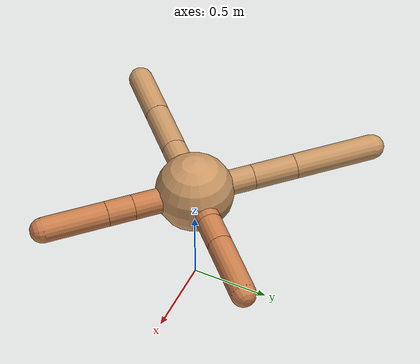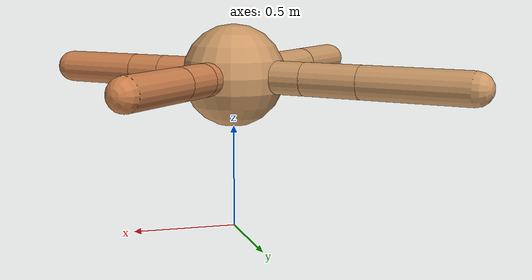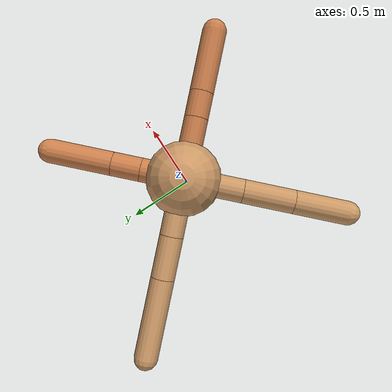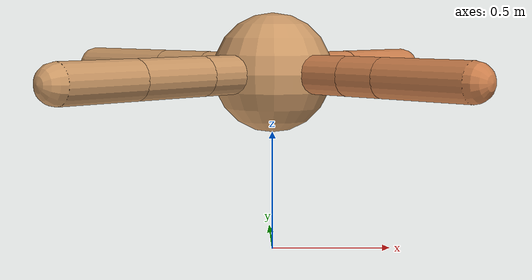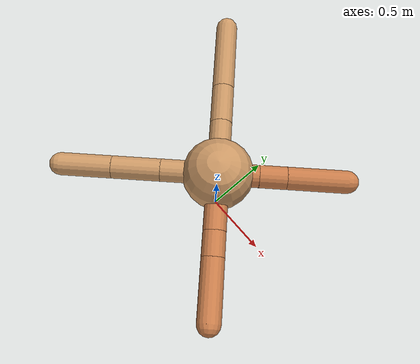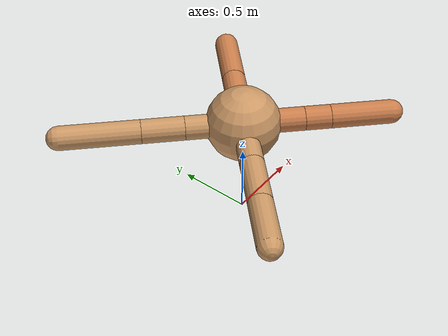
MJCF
<mujoco model="ant">
  <compiler angle="degree" coordinate="local" inertiafromgeom="true" />
  <option integrator="RK4" timestep="0.01" />
  <custom>
    <numeric data="0.0 0.0 0.55 1.0 0.0 0.0 0.0 0.0 1.0 0.0 -1.0 0.0 -1.0 0.0 1.0" name="init_qpos" />
  </custom>
  <default>
    <joint armature="1" damping="1" limited="true" />
    <geom conaffinity="0" condim="3" density="5.0" friction="1.5 0.1 0.1" margin="0.01" rgba="0.8 0.6 0.4 1" />
  </default>
  <worldbody>
    <body name="torso" pos="0 0 0.75">
      <geom name="torso_geom" pos="0 0 0" size="0.25" type="sphere" />

      <body name="front_left_leg" pos="0 0 0">
        <geom fromto="0.0 0.0 0.0 0.2 0.2 0.0" name="aux_1_geom" size="0.08" type="capsule" rgba=".8 .5 .3 1" />
        <body name="aux_1" pos="0.2 0.2 0.0">
          <joint axis="0 0 1" name="hip_1" pos="0.0 0.0 0.0" range="-40 40" type="hinge" />
          <geom fromto="0.0 0.0 0.0 0.13511512572510734 0.13511512572510734 0.0" name="left_leg_geom" size="0.08" type="capsule" rgba=".8 .5 .3 1" />
          <body pos="0.13511512572510734 0.13511512572510734 0.0" name="front_left_foot">
            <joint axis="-1 1 0" name="ankle_1" pos="0.0 0.0 0.0" range="30 100" type="hinge" />
            <geom fromto="0.0 0.0 0.0 0.29298255934488665 0.29298255934488665 0.0" name="left_ankle_geom" size="0.08" type="capsule" rgba=".8 .5 .3 1" />
          </body>
        </body>
      </body>
      <body name="front_right_leg" pos="0 0 0">
        <geom fromto="0.0 0.0 0.0 -0.27102158337002596 0.27102158337002596 0.0" name="aux_2_geom" size="0.08" type="capsule" />
        <body name="aux_2" pos="-0.27102158337002596 0.27102158337002596 0.0">
          <joint axis="0 0 1" name="hip_2" pos="0.0 0.0 0.0" range="-40 40" type="hinge" />
          <geom fromto="0.0 0.0 0.0 -0.20021704776604557 0.20021704776604557 0.0" name="right_leg_geom" size="0.08" type="capsule" />
          <body pos="-0.20021704776604557 0.20021704776604557 0.0" name="front_right_foot">
            <joint axis="1 1 0" name="ankle_2" pos="0.0 0.0 0.0" range="-100 -30" type="hinge" />
            <geom fromto="0.0 0.0 0.0 -0.3764345558673991 0.3764345558673991 0.0" name="right_ankle_geom" size="0.08" type="capsule" />
          </body>
        </body>
      </body>
      <body name="left_back_leg" pos="0 0 0">
        <geom fromto="0.0 0.0 0.0 -0.2812864740284538 -0.2812864740284538 0.0" name="aux_3_geom" size="0.08" type="capsule" />
        <body name="aux_3" pos="-0.2812864740284538 -0.2812864740284538 0.0">
          <joint axis="0 0 1" name="hip_3" pos="0.0 0.0 0.0" range="-40 40" type="hinge" />
          <geom fromto="0.0 0.0 0.0 -0.23955659491332276 -0.23955659491332276 0.0" name="back_leg_geom" size="0.08" type="capsule" />
          <body pos="-0.23955659491332276 -0.23955659491332276 0.0" name="left_back_foot">
            <joint axis="-1 1 0" name="ankle_3" pos="0.0 0.0 0.0" range="-100 -30" type="hinge" />
            <geom fromto="0.0 0.0 0.0 -0.25429571355539077 -0.25429571355539077 0.0" name="third_ankle_geom" size="0.08" type="capsule" />
          </body>
        </body>
      </body>
      <body name="right_back_leg" pos="0 0 0">
        <geom fromto="0.0 0.0 0.0 0.286043239310007 -0.286043239310007 0.0" name="aux_4_geom" size="0.08" type="capsule" rgba=".8 .5 .3 1" />
        <body name="aux_4" pos="0.286043239310007 -0.286043239310007 0.0">
          <joint axis="0 0 1" name="hip_4" pos="0.0 0.0 0.0" range="-40 40" type="hinge" />
          <geom fromto="0.0 0.0 0.0 0.12204452606240068 -0.12204452606240068 0.0" name="rightback_leg_geom" size="0.08" type="capsule" rgba=".8 .5 .3 1" />
          <body pos="0.12204452606240068 -0.12204452606240068 0.0" name="right_back_foot">
            <joint axis="1 1 0" name="ankle_4" pos="0.0 0.0 0.0" range="30 100" type="hinge" />
            <geom fromto="0.0 0.0 0.0 0.2893288051612893 -0.2893288051612893 0.0" name="fourth_ankle_geom" size="0.08" type="capsule" rgba=".8 .5 .3 1" />
          </body>
        </body>
      </body>
    </body>
  </worldbody>
  <actuator>
    <motor ctrllimited="true" ctrlrange="-1.0 1.0" joint="hip_4" gear="150" />
    <motor ctrllimited="true" ctrlrange="-1.0 1.0" joint="ankle_4" gear="150" />
    <motor ctrllimited="true" ctrlrange="-1.0 1.0" joint="hip_1" gear="150" />
    <motor ctrllimited="true" ctrlrange="-1.0 1.0" joint="ankle_1" gear="150" />
    <motor ctrllimited="true" ctrlrange="-1.0 1.0" joint="hip_2" gear="150" />
    <motor ctrllimited="true" ctrlrange="-1.0 1.0" joint="ankle_2" gear="150" />
    <motor ctrllimited="true" ctrlrange="-1.0 1.0" joint="hip_3" gear="150" />
    <motor ctrllimited="true" ctrlrange="-1.0 1.0" joint="ankle_3" gear="150" />
  </actuator>
</mujoco>
